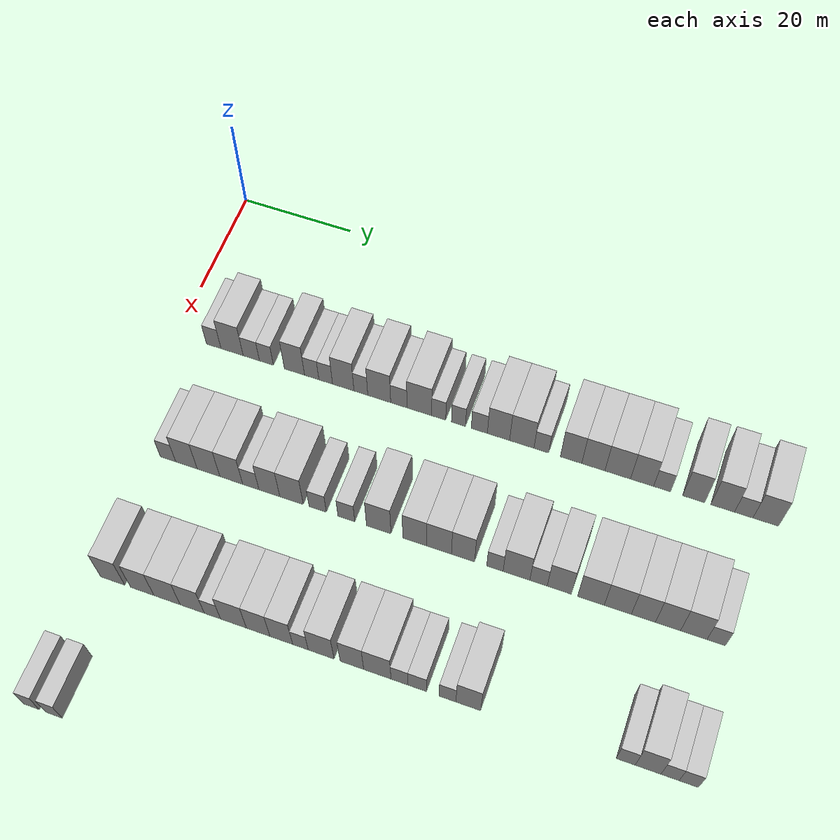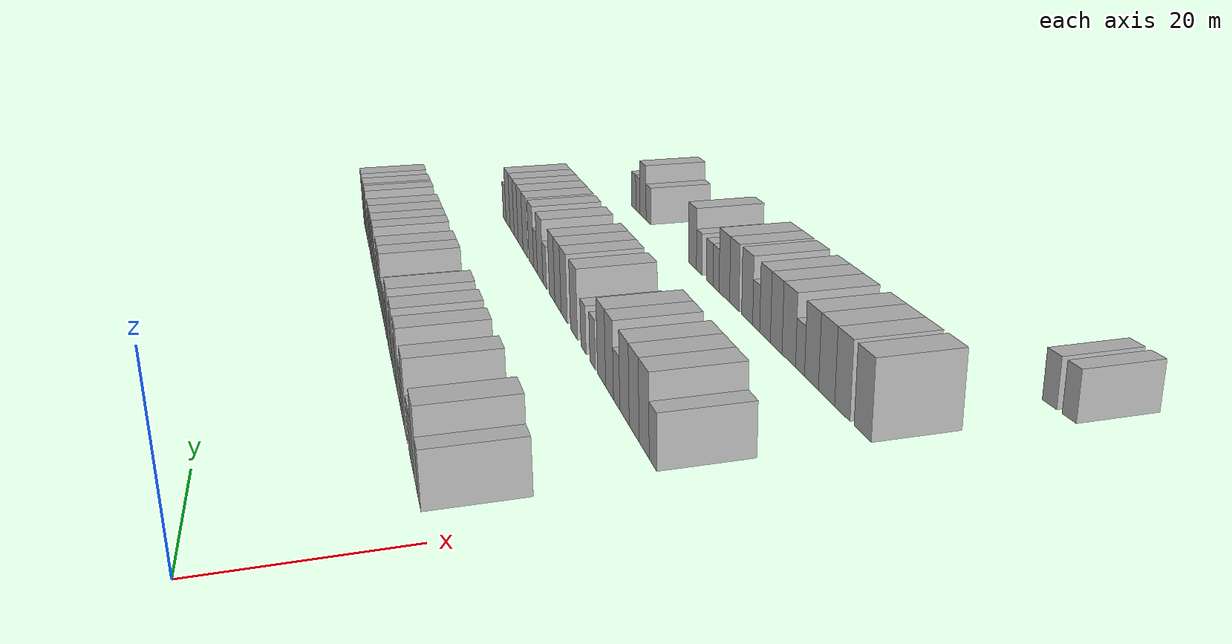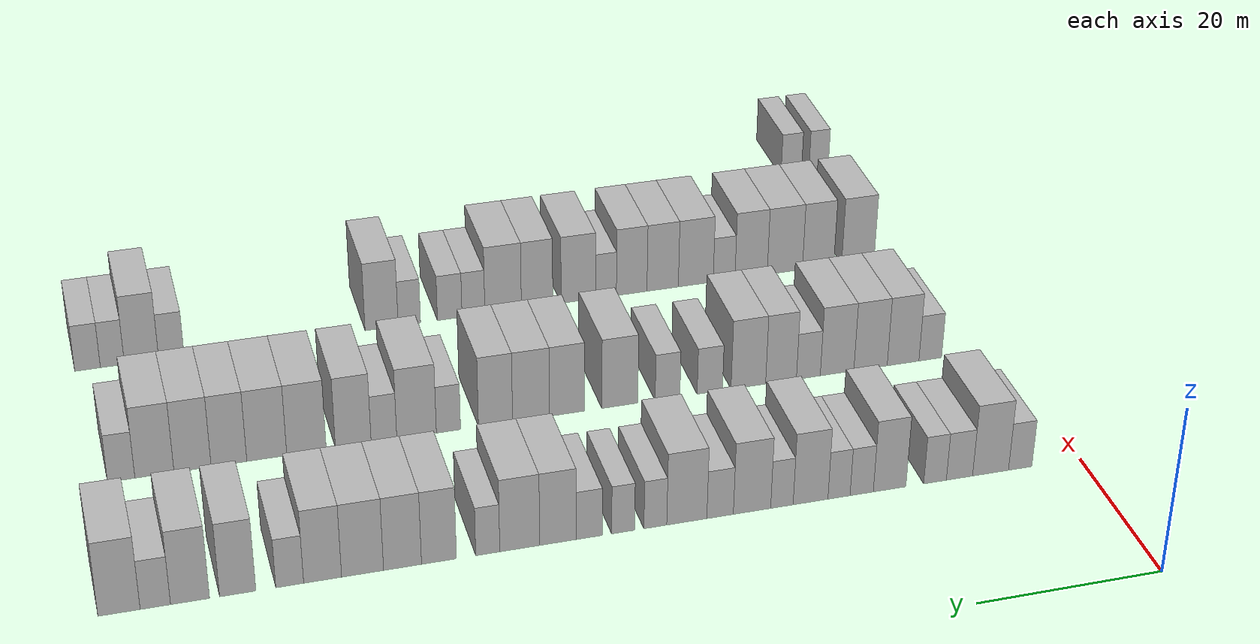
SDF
<sdf version="1.6">
 <world name="default">
  <model name="building_94">
   <static>1</static>
   <pose>25.0000 6.9144 0 0.000000 0.000000 0.000000</pose>
   <link name="link">
    <pose>0 0 3.00 0 0 0</pose>
    <collision name="collision"><geometry><box><size>10.0000 2.6749 6.0000</size></box></geometry></collision>
    <visual name="visual">
     <cast_shadows>0</cast_shadows>
     <geometry><box><size>10.0000 2.6749 6.0000</size></box></geometry>
     <material>
      <script>
       <uri>model://HANNAS_wall/materials/scripts</uri>
       <uri>model://HANNAS_wall/materials/textures</uri>
       <name>vrc/HANNAS_wall</name>
      </script>
     </material>
    </visual>
   </link>
  </model>
  <model name="building_95">
   <static>1</static>
   <pose>25.0000 10.2967 0 0.000000 0.000000 0.000000</pose>
   <link name="link">
    <pose>0 0 4.50 0 0 0</pose>
    <collision name="collision"><geometry><box><size>10.0000 4.0898 9.0000</size></box></geometry></collision>
    <visual name="visual">
     <cast_shadows>0</cast_shadows>
     <geometry><box><size>10.0000 4.0898 9.0000</size></box></geometry>
     <material>
      <script>
       <uri>model://HANNAS_wall/materials/scripts</uri>
       <uri>model://HANNAS_wall/materials/textures</uri>
       <name>vrc/HANNAS_wall</name>
      </script>
     </material>
    </visual>
   </link>
  </model>
  <model name="building_96">
   <static>1</static>
   <pose>25.0000 13.8268 0 0.000000 0.000000 0.000000</pose>
   <link name="link">
    <pose>0 0 3.00 0 0 0</pose>
    <collision name="collision"><geometry><box><size>10.0000 2.9702 6.0000</size></box></geometry></collision>
    <visual name="visual">
     <cast_shadows>0</cast_shadows>
     <geometry><box><size>10.0000 2.9702 6.0000</size></box></geometry>
     <material>
      <script>
       <uri>model://HANNAS_wall/materials/scripts</uri>
       <uri>model://HANNAS_wall/materials/textures</uri>
       <name>vrc/HANNAS_wall</name>
      </script>
     </material>
    </visual>
   </link>
  </model>
  <model name="building_97">
   <static>1</static>
   <pose>25.0000 16.5884 0 0.000000 0.000000 0.000000</pose>
   <link name="link">
    <pose>0 0 3.00 0 0 0</pose>
    <collision name="collision"><geometry><box><size>10.0000 2.5530 6.0000</size></box></geometry></collision>
    <visual name="visual">
     <cast_shadows>0</cast_shadows>
     <geometry><box><size>10.0000 2.5530 6.0000</size></box></geometry>
     <material>
      <script>
       <uri>model://HANNAS_wall/materials/scripts</uri>
       <uri>model://HANNAS_wall/materials/textures</uri>
       <name>vrc/HANNAS_wall</name>
      </script>
     </material>
    </visual>
   </link>
  </model>
  <model name="building_98">
   <static>1</static>
   <pose>25.0000 21.6881 0 0.000000 0.000000 0.000000</pose>
   <link name="link">
    <pose>0 0 4.50 0 0 0</pose>
    <collision name="collision"><geometry><box><size>10.0000 3.6464 9.0000</size></box></geometry></collision>
    <visual name="visual">
     <cast_shadows>0</cast_shadows>
     <geometry><box><size>10.0000 3.6464 9.0000</size></box></geometry>
     <material>
      <script>
       <uri>model://HANNAS_wall/materials/scripts</uri>
       <uri>model://HANNAS_wall/materials/textures</uri>
       <name>vrc/HANNAS_wall</name>
      </script>
     </material>
    </visual>
   </link>
  </model>
  <model name="building_99">
   <static>1</static>
   <pose>25.0000 24.8049 0 0.000000 0.000000 0.000000</pose>
   <link name="link">
    <pose>0 0 3.00 0 0 0</pose>
    <collision name="collision"><geometry><box><size>10.0000 2.5871 6.0000</size></box></geometry></collision>
    <visual name="visual">
     <cast_shadows>0</cast_shadows>
     <geometry><box><size>10.0000 2.5871 6.0000</size></box></geometry>
     <material>
      <script>
       <uri>model://HANNAS_wall/materials/scripts</uri>
       <uri>model://HANNAS_wall/materials/textures</uri>
       <name>vrc/HANNAS_wall</name>
      </script>
     </material>
    </visual>
   </link>
  </model>
  <model name="building_100">
   <static>1</static>
   <pose>25.0000 27.3271 0 0.000000 0.000000 0.000000</pose>
   <link name="link">
    <pose>0 0 3.00 0 0 0</pose>
    <collision name="collision"><geometry><box><size>10.0000 2.4573 6.0000</size></box></geometry></collision>
    <visual name="visual">
     <cast_shadows>0</cast_shadows>
     <geometry><box><size>10.0000 2.4573 6.0000</size></box></geometry>
     <material>
      <script>
       <uri>model://HANNAS_wall/materials/scripts</uri>
       <uri>model://HANNAS_wall/materials/textures</uri>
       <name>vrc/HANNAS_wall</name>
      </script>
     </material>
    </visual>
   </link>
  </model>
  <model name="building_101">
   <static>1</static>
   <pose>25.0000 30.4728 0 0.000000 0.000000 0.000000</pose>
   <link name="link">
    <pose>0 0 4.50 0 0 0</pose>
    <collision name="collision"><geometry><box><size>10.0000 3.8341 9.0000</size></box></geometry></collision>
    <visual name="visual">
     <cast_shadows>0</cast_shadows>
     <geometry><box><size>10.0000 3.8341 9.0000</size></box></geometry>
     <material>
      <script>
       <uri>model://HANNAS_wall/materials/scripts</uri>
       <uri>model://HANNAS_wall/materials/textures</uri>
       <name>vrc/HANNAS_wall</name>
      </script>
     </material>
    </visual>
   </link>
  </model>
  <model name="building_102">
   <static>1</static>
   <pose>25.0000 33.6233 0 0.000000 0.000000 0.000000</pose>
   <link name="link">
    <pose>0 0 3.00 0 0 0</pose>
    <collision name="collision"><geometry><box><size>10.0000 2.4669 6.0000</size></box></geometry></collision>
    <visual name="visual">
     <cast_shadows>0</cast_shadows>
     <geometry><box><size>10.0000 2.4669 6.0000</size></box></geometry>
     <material>
      <script>
       <uri>model://HANNAS_wall/materials/scripts</uri>
       <uri>model://HANNAS_wall/materials/textures</uri>
       <name>vrc/HANNAS_wall</name>
      </script>
     </material>
    </visual>
   </link>
  </model>
  <model name="building_103">
   <static>1</static>
   <pose>25.0000 36.8933 0 0.000000 0.000000 0.000000</pose>
   <link name="link">
    <pose>0 0 4.50 0 0 0</pose>
    <collision name="collision"><geometry><box><size>10.0000 4.0731 9.0000</size></box></geometry></collision>
    <visual name="visual">
     <cast_shadows>0</cast_shadows>
     <geometry><box><size>10.0000 4.0731 9.0000</size></box></geometry>
     <material>
      <script>
       <uri>model://HANNAS_wall/materials/scripts</uri>
       <uri>model://HANNAS_wall/materials/textures</uri>
       <name>vrc/HANNAS_wall</name>
      </script>
     </material>
    </visual>
   </link>
  </model>
  <model name="building_104">
   <static>1</static>
   <pose>25.0000 40.3697 0 0.000000 0.000000 0.000000</pose>
   <link name="link">
    <pose>0 0 3.00 0 0 0</pose>
    <collision name="collision"><geometry><box><size>10.0000 2.8798 6.0000</size></box></geometry></collision>
    <visual name="visual">
     <cast_shadows>0</cast_shadows>
     <geometry><box><size>10.0000 2.8798 6.0000</size></box></geometry>
     <material>
      <script>
       <uri>model://HANNAS_wall/materials/scripts</uri>
       <uri>model://HANNAS_wall/materials/textures</uri>
       <name>vrc/HANNAS_wall</name>
      </script>
     </material>
    </visual>
   </link>
  </model>
  <model name="building_105">
   <static>1</static>
   <pose>25.0000 43.9741 0 0.000000 0.000000 0.000000</pose>
   <link name="link">
    <pose>0 0 4.50 0 0 0</pose>
    <collision name="collision"><geometry><box><size>10.0000 4.3290 9.0000</size></box></geometry></collision>
    <visual name="visual">
     <cast_shadows>0</cast_shadows>
     <geometry><box><size>10.0000 4.3290 9.0000</size></box></geometry>
     <material>
      <script>
       <uri>model://HANNAS_wall/materials/scripts</uri>
       <uri>model://HANNAS_wall/materials/textures</uri>
       <name>vrc/HANNAS_wall</name>
      </script>
     </material>
    </visual>
   </link>
  </model>
  <model name="building_106">
   <static>1</static>
   <pose>25.0000 47.3637 0 0.000000 0.000000 0.000000</pose>
   <link name="link">
    <pose>0 0 3.00 0 0 0</pose>
    <collision name="collision"><geometry><box><size>10.0000 2.4501 6.0000</size></box></geometry></collision>
    <visual name="visual">
     <cast_shadows>0</cast_shadows>
     <geometry><box><size>10.0000 2.4501 6.0000</size></box></geometry>
     <material>
      <script>
       <uri>model://HANNAS_wall/materials/scripts</uri>
       <uri>model://HANNAS_wall/materials/textures</uri>
       <name>vrc/HANNAS_wall</name>
      </script>
     </material>
    </visual>
   </link>
  </model>
  <model name="building_107">
   <static>1</static>
   <pose>25.0000 50.8143 0 0.000000 0.000000 0.000000</pose>
   <link name="link">
    <pose>0 0 3.00 0 0 0</pose>
    <collision name="collision"><geometry><box><size>10.0000 2.4510 6.0000</size></box></geometry></collision>
    <visual name="visual">
     <cast_shadows>0</cast_shadows>
     <geometry><box><size>10.0000 2.4510 6.0000</size></box></geometry>
     <material>
      <script>
       <uri>model://HANNAS_wall/materials/scripts</uri>
       <uri>model://HANNAS_wall/materials/textures</uri>
       <name>vrc/HANNAS_wall</name>
      </script>
     </material>
    </visual>
   </link>
  </model>
  <model name="building_108">
   <static>1</static>
   <pose>25.0000 54.4332 0 0.000000 0.000000 0.000000</pose>
   <link name="link">
    <pose>0 0 3.00 0 0 0</pose>
    <collision name="collision"><geometry><box><size>10.0000 2.7869 6.0000</size></box></geometry></collision>
    <visual name="visual">
     <cast_shadows>0</cast_shadows>
     <geometry><box><size>10.0000 2.7869 6.0000</size></box></geometry>
     <material>
      <script>
       <uri>model://HANNAS_wall/materials/scripts</uri>
       <uri>model://HANNAS_wall/materials/textures</uri>
       <name>vrc/HANNAS_wall</name>
      </script>
     </material>
    </visual>
   </link>
  </model>
  <model name="building_109">
   <static>1</static>
   <pose>25.0000 57.7444 0 0.000000 0.000000 0.000000</pose>
   <link name="link">
    <pose>0 0 4.50 0 0 0</pose>
    <collision name="collision"><geometry><box><size>10.0000 3.8354 9.0000</size></box></geometry></collision>
    <visual name="visual">
     <cast_shadows>0</cast_shadows>
     <geometry><box><size>10.0000 3.8354 9.0000</size></box></geometry>
     <material>
      <script>
       <uri>model://HANNAS_wall/materials/scripts</uri>
       <uri>model://HANNAS_wall/materials/textures</uri>
       <name>vrc/HANNAS_wall</name>
      </script>
     </material>
    </visual>
   </link>
  </model>
  <model name="building_110">
   <static>1</static>
   <pose>25.0000 61.7521 0 0.000000 0.000000 0.000000</pose>
   <link name="link">
    <pose>0 0 4.50 0 0 0</pose>
    <collision name="collision"><geometry><box><size>10.0000 4.1800 9.0000</size></box></geometry></collision>
    <visual name="visual">
     <cast_shadows>0</cast_shadows>
     <geometry><box><size>10.0000 4.1800 9.0000</size></box></geometry>
     <material>
      <script>
       <uri>model://HANNAS_wall/materials/scripts</uri>
       <uri>model://HANNAS_wall/materials/textures</uri>
       <name>vrc/HANNAS_wall</name>
      </script>
     </material>
    </visual>
   </link>
  </model>
  <model name="building_111">
   <static>1</static>
   <pose>25.0000 65.0967 0 0.000000 0.000000 0.000000</pose>
   <link name="link">
    <pose>0 0 3.00 0 0 0</pose>
    <collision name="collision"><geometry><box><size>10.0000 2.5093 6.0000</size></box></geometry></collision>
    <visual name="visual">
     <cast_shadows>0</cast_shadows>
     <geometry><box><size>10.0000 2.5093 6.0000</size></box></geometry>
     <material>
      <script>
       <uri>model://HANNAS_wall/materials/scripts</uri>
       <uri>model://HANNAS_wall/materials/textures</uri>
       <name>vrc/HANNAS_wall</name>
      </script>
     </material>
    </visual>
   </link>
  </model>
  <model name="building_112">
   <static>1</static>
   <pose>25.0000 70.1592 0 0.000000 0.000000 0.000000</pose>
   <link name="link">
    <pose>0 0 4.50 0 0 0</pose>
    <collision name="collision"><geometry><box><size>10.0000 3.6157 9.0000</size></box></geometry></collision>
    <visual name="visual">
     <cast_shadows>0</cast_shadows>
     <geometry><box><size>10.0000 3.6157 9.0000</size></box></geometry>
     <material>
      <script>
       <uri>model://HANNAS_wall/materials/scripts</uri>
       <uri>model://HANNAS_wall/materials/textures</uri>
       <name>vrc/HANNAS_wall</name>
      </script>
     </material>
    </visual>
   </link>
  </model>
  <model name="building_113">
   <static>1</static>
   <pose>25.0000 73.9177 0 0.000000 0.000000 0.000000</pose>
   <link name="link">
    <pose>0 0 4.50 0 0 0</pose>
    <collision name="collision"><geometry><box><size>10.0000 3.9013 9.0000</size></box></geometry></collision>
    <visual name="visual">
     <cast_shadows>0</cast_shadows>
     <geometry><box><size>10.0000 3.9013 9.0000</size></box></geometry>
     <material>
      <script>
       <uri>model://HANNAS_wall/materials/scripts</uri>
       <uri>model://HANNAS_wall/materials/textures</uri>
       <name>vrc/HANNAS_wall</name>
      </script>
     </material>
    </visual>
   </link>
  </model>
  <model name="building_114">
   <static>1</static>
   <pose>25.0000 78.0117 0 0.000000 0.000000 0.000000</pose>
   <link name="link">
    <pose>0 0 4.50 0 0 0</pose>
    <collision name="collision"><geometry><box><size>10.0000 4.2867 9.0000</size></box></geometry></collision>
    <visual name="visual">
     <cast_shadows>0</cast_shadows>
     <geometry><box><size>10.0000 4.2867 9.0000</size></box></geometry>
     <material>
      <script>
       <uri>model://HANNAS_wall/materials/scripts</uri>
       <uri>model://HANNAS_wall/materials/textures</uri>
       <name>vrc/HANNAS_wall</name>
      </script>
     </material>
    </visual>
   </link>
  </model>
  <model name="building_115">
   <static>1</static>
   <pose>25.0000 82.0804 0 0.000000 0.000000 0.000000</pose>
   <link name="link">
    <pose>0 0 4.50 0 0 0</pose>
    <collision name="collision"><geometry><box><size>10.0000 3.8507 9.0000</size></box></geometry></collision>
    <visual name="visual">
     <cast_shadows>0</cast_shadows>
     <geometry><box><size>10.0000 3.8507 9.0000</size></box></geometry>
     <material>
      <script>
       <uri>model://HANNAS_wall/materials/scripts</uri>
       <uri>model://HANNAS_wall/materials/textures</uri>
       <name>vrc/HANNAS_wall</name>
      </script>
     </material>
    </visual>
   </link>
  </model>
  <model name="building_116">
   <static>1</static>
   <pose>25.0000 85.4117 0 0.000000 0.000000 0.000000</pose>
   <link name="link">
    <pose>0 0 3.00 0 0 0</pose>
    <collision name="collision"><geometry><box><size>10.0000 2.8119 6.0000</size></box></geometry></collision>
    <visual name="visual">
     <cast_shadows>0</cast_shadows>
     <geometry><box><size>10.0000 2.8119 6.0000</size></box></geometry>
     <material>
      <script>
       <uri>model://HANNAS_wall/materials/scripts</uri>
       <uri>model://HANNAS_wall/materials/textures</uri>
       <name>vrc/HANNAS_wall</name>
      </script>
     </material>
    </visual>
   </link>
  </model>
  <model name="building_117">
   <static>1</static>
   <pose>25.0000 90.6333 0 0.000000 0.000000 0.000000</pose>
   <link name="link">
    <pose>0 0 4.50 0 0 0</pose>
    <collision name="collision"><geometry><box><size>10.0000 3.6314 9.0000</size></box></geometry></collision>
    <visual name="visual">
     <cast_shadows>0</cast_shadows>
     <geometry><box><size>10.0000 3.6314 9.0000</size></box></geometry>
     <material>
      <script>
       <uri>model://HANNAS_wall/materials/scripts</uri>
       <uri>model://HANNAS_wall/materials/textures</uri>
       <name>vrc/HANNAS_wall</name>
      </script>
     </material>
    </visual>
   </link>
  </model>
  <model name="building_118">
   <static>1</static>
   <pose>25.0000 95.3854 0 0.000000 0.000000 0.000000</pose>
   <link name="link">
    <pose>0 0 4.50 0 0 0</pose>
    <collision name="collision"><geometry><box><size>10.0000 3.8728 9.0000</size></box></geometry></collision>
    <visual name="visual">
     <cast_shadows>0</cast_shadows>
     <geometry><box><size>10.0000 3.8728 9.0000</size></box></geometry>
     <material>
      <script>
       <uri>model://HANNAS_wall/materials/scripts</uri>
       <uri>model://HANNAS_wall/materials/textures</uri>
       <name>vrc/HANNAS_wall</name>
      </script>
     </material>
    </visual>
   </link>
  </model>
  <model name="building_119">
   <static>1</static>
   <pose>25.0000 98.8190 0 0.000000 0.000000 0.000000</pose>
   <link name="link">
    <pose>0 0 3.00 0 0 0</pose>
    <collision name="collision"><geometry><box><size>10.0000 2.9945 6.0000</size></box></geometry></collision>
    <visual name="visual">
     <cast_shadows>0</cast_shadows>
     <geometry><box><size>10.0000 2.9945 6.0000</size></box></geometry>
     <material>
      <script>
       <uri>model://HANNAS_wall/materials/scripts</uri>
       <uri>model://HANNAS_wall/materials/textures</uri>
       <name>vrc/HANNAS_wall</name>
      </script>
     </material>
    </visual>
   </link>
  </model>
  <model name="building_120">
   <static>1</static>
   <pose>25.0000 102.3894 0 0.000000 0.000000 0.000000</pose>
   <link name="link">
    <pose>0 0 4.50 0 0 0</pose>
    <collision name="collision"><geometry><box><size>10.0000 4.1463 9.0000</size></box></geometry></collision>
    <visual name="visual">
     <cast_shadows>0</cast_shadows>
     <geometry><box><size>10.0000 4.1463 9.0000</size></box></geometry>
     <material>
      <script>
       <uri>model://HANNAS_wall/materials/scripts</uri>
       <uri>model://HANNAS_wall/materials/textures</uri>
       <name>vrc/HANNAS_wall</name>
      </script>
     </material>
    </visual>
   </link>
  </model>
  <model name="building_291">
   <static>1</static>
   <pose>47.0000 8.5733 0 0.000000 0.000000 0.000000</pose>
   <link name="link">
    <pose>0 0 3.00 0 0 0</pose>
    <collision name="collision"><geometry><box><size>10.0000 2.7366 6.0000</size></box></geometry></collision>
    <visual name="visual">
     <cast_shadows>0</cast_shadows>
     <geometry><box><size>10.0000 2.7366 6.0000</size></box></geometry>
     <material>
      <script>
       <uri>model://HANNAS_wall/materials/scripts</uri>
       <uri>model://HANNAS_wall/materials/textures</uri>
       <name>vrc/HANNAS_wall</name>
      </script>
     </material>
    </visual>
   </link>
  </model>
  <model name="building_292">
   <static>1</static>
   <pose>47.0000 11.8498 0 0.000000 0.000000 0.000000</pose>
   <link name="link">
    <pose>0 0 4.50 0 0 0</pose>
    <collision name="collision"><geometry><box><size>10.0000 3.8163 9.0000</size></box></geometry></collision>
    <visual name="visual">
     <cast_shadows>0</cast_shadows>
     <geometry><box><size>10.0000 3.8163 9.0000</size></box></geometry>
     <material>
      <script>
       <uri>model://HANNAS_wall/materials/scripts</uri>
       <uri>model://HANNAS_wall/materials/textures</uri>
       <name>vrc/HANNAS_wall</name>
      </script>
     </material>
    </visual>
   </link>
  </model>
  <model name="building_293">
   <static>1</static>
   <pose>47.0000 15.7530 0 0.000000 0.000000 0.000000</pose>
   <link name="link">
    <pose>0 0 4.50 0 0 0</pose>
    <collision name="collision"><geometry><box><size>10.0000 3.9901 9.0000</size></box></geometry></collision>
    <visual name="visual">
     <cast_shadows>0</cast_shadows>
     <geometry><box><size>10.0000 3.9901 9.0000</size></box></geometry>
     <material>
      <script>
       <uri>model://HANNAS_wall/materials/scripts</uri>
       <uri>model://HANNAS_wall/materials/textures</uri>
       <name>vrc/HANNAS_wall</name>
      </script>
     </material>
    </visual>
   </link>
  </model>
  <model name="building_294">
   <static>1</static>
   <pose>47.0000 19.7426 0 0.000000 0.000000 0.000000</pose>
   <link name="link">
    <pose>0 0 4.50 0 0 0</pose>
    <collision name="collision"><geometry><box><size>10.0000 3.9890 9.0000</size></box></geometry></collision>
    <visual name="visual">
     <cast_shadows>0</cast_shadows>
     <geometry><box><size>10.0000 3.9890 9.0000</size></box></geometry>
     <material>
      <script>
       <uri>model://HANNAS_wall/materials/scripts</uri>
       <uri>model://HANNAS_wall/materials/textures</uri>
       <name>vrc/HANNAS_wall</name>
      </script>
     </material>
    </visual>
   </link>
  </model>
  <model name="building_295">
   <static>1</static>
   <pose>47.0000 23.1518 0 0.000000 0.000000 0.000000</pose>
   <link name="link">
    <pose>0 0 3.00 0 0 0</pose>
    <collision name="collision"><geometry><box><size>10.0000 2.8295 6.0000</size></box></geometry></collision>
    <visual name="visual">
     <cast_shadows>0</cast_shadows>
     <geometry><box><size>10.0000 2.8295 6.0000</size></box></geometry>
     <material>
      <script>
       <uri>model://HANNAS_wall/materials/scripts</uri>
       <uri>model://HANNAS_wall/materials/textures</uri>
       <name>vrc/HANNAS_wall</name>
      </script>
     </material>
    </visual>
   </link>
  </model>
  <model name="building_296">
   <static>1</static>
   <pose>47.0000 26.3794 0 0.000000 0.000000 0.000000</pose>
   <link name="link">
    <pose>0 0 4.50 0 0 0</pose>
    <collision name="collision"><geometry><box><size>10.0000 3.6257 9.0000</size></box></geometry></collision>
    <visual name="visual">
     <cast_shadows>0</cast_shadows>
     <geometry><box><size>10.0000 3.6257 9.0000</size></box></geometry>
     <material>
      <script>
       <uri>model://HANNAS_wall/materials/scripts</uri>
       <uri>model://HANNAS_wall/materials/textures</uri>
       <name>vrc/HANNAS_wall</name>
      </script>
     </material>
    </visual>
   </link>
  </model>
  <model name="building_297">
   <static>1</static>
   <pose>47.0000 30.2187 0 0.000000 0.000000 0.000000</pose>
   <link name="link">
    <pose>0 0 4.50 0 0 0</pose>
    <collision name="collision"><geometry><box><size>10.0000 4.0527 9.0000</size></box></geometry></collision>
    <visual name="visual">
     <cast_shadows>0</cast_shadows>
     <geometry><box><size>10.0000 4.0527 9.0000</size></box></geometry>
     <material>
      <script>
       <uri>model://HANNAS_wall/materials/scripts</uri>
       <uri>model://HANNAS_wall/materials/textures</uri>
       <name>vrc/HANNAS_wall</name>
      </script>
     </material>
    </visual>
   </link>
  </model>
  <model name="building_298">
   <static>1</static>
   <pose>47.0000 34.7173 0 0.000000 0.000000 0.000000</pose>
   <link name="link">
    <pose>0 0 3.00 0 0 0</pose>
    <collision name="collision"><geometry><box><size>10.0000 2.9447 6.0000</size></box></geometry></collision>
    <visual name="visual">
     <cast_shadows>0</cast_shadows>
     <geometry><box><size>10.0000 2.9447 6.0000</size></box></geometry>
     <material>
      <script>
       <uri>model://HANNAS_wall/materials/scripts</uri>
       <uri>model://HANNAS_wall/materials/textures</uri>
       <name>vrc/HANNAS_wall</name>
      </script>
     </material>
    </visual>
   </link>
  </model>
  <model name="building_299">
   <static>1</static>
   <pose>47.0000 39.6180 0 0.000000 0.000000 0.000000</pose>
   <link name="link">
    <pose>0 0 3.00 0 0 0</pose>
    <collision name="collision"><geometry><box><size>10.0000 2.8566 6.0000</size></box></geometry></collision>
    <visual name="visual">
     <cast_shadows>0</cast_shadows>
     <geometry><box><size>10.0000 2.8566 6.0000</size></box></geometry>
     <material>
      <script>
       <uri>model://HANNAS_wall/materials/scripts</uri>
       <uri>model://HANNAS_wall/materials/textures</uri>
       <name>vrc/HANNAS_wall</name>
      </script>
     </material>
    </visual>
   </link>
  </model>
  <model name="building_300">
   <static>1</static>
   <pose>47.0000 45.1063 0 0.000000 0.000000 0.000000</pose>
   <link name="link">
    <pose>0 0 4.50 0 0 0</pose>
    <collision name="collision"><geometry><box><size>10.0000 4.1202 9.0000</size></box></geometry></collision>
    <visual name="visual">
     <cast_shadows>0</cast_shadows>
     <geometry><box><size>10.0000 4.1202 9.0000</size></box></geometry>
     <material>
      <script>
       <uri>model://HANNAS_wall/materials/scripts</uri>
       <uri>model://HANNAS_wall/materials/textures</uri>
       <name>vrc/HANNAS_wall</name>
      </script>
     </material>
    </visual>
   </link>
  </model>
  <model name="building_301">
   <static>1</static>
   <pose>47.0000 51.1379 0 0.000000 0.000000 0.000000</pose>
   <link name="link">
    <pose>0 0 4.50 0 0 0</pose>
    <collision name="collision"><geometry><box><size>10.0000 3.9429 9.0000</size></box></geometry></collision>
    <visual name="visual">
     <cast_shadows>0</cast_shadows>
     <geometry><box><size>10.0000 3.9429 9.0000</size></box></geometry>
     <material>
      <script>
       <uri>model://HANNAS_wall/materials/scripts</uri>
       <uri>model://HANNAS_wall/materials/textures</uri>
       <name>vrc/HANNAS_wall</name>
      </script>
     </material>
    </visual>
   </link>
  </model>
  <model name="building_302">
   <static>1</static>
   <pose>47.0000 55.1902 0 0.000000 0.000000 0.000000</pose>
   <link name="link">
    <pose>0 0 4.50 0 0 0</pose>
    <collision name="collision"><geometry><box><size>10.0000 4.1617 9.0000</size></box></geometry></collision>
    <visual name="visual">
     <cast_shadows>0</cast_shadows>
     <geometry><box><size>10.0000 4.1617 9.0000</size></box></geometry>
     <material>
      <script>
       <uri>model://HANNAS_wall/materials/scripts</uri>
       <uri>model://HANNAS_wall/materials/textures</uri>
       <name>vrc/HANNAS_wall</name>
      </script>
     </material>
    </visual>
   </link>
  </model>
  <model name="building_303">
   <static>1</static>
   <pose>47.0000 59.1838 0 0.000000 0.000000 0.000000</pose>
   <link name="link">
    <pose>0 0 4.50 0 0 0</pose>
    <collision name="collision"><geometry><box><size>10.0000 3.8256 9.0000</size></box></geometry></collision>
    <visual name="visual">
     <cast_shadows>0</cast_shadows>
     <geometry><box><size>10.0000 3.8256 9.0000</size></box></geometry>
     <material>
      <script>
       <uri>model://HANNAS_wall/materials/scripts</uri>
       <uri>model://HANNAS_wall/materials/textures</uri>
       <name>vrc/HANNAS_wall</name>
      </script>
     </material>
    </visual>
   </link>
  </model>
  <model name="building_304">
   <static>1</static>
   <pose>47.0000 64.4404 0 0.000000 0.000000 0.000000</pose>
   <link name="link">
    <pose>0 0 3.00 0 0 0</pose>
    <collision name="collision"><geometry><box><size>10.0000 2.6876 6.0000</size></box></geometry></collision>
    <visual name="visual">
     <cast_shadows>0</cast_shadows>
     <geometry><box><size>10.0000 2.6876 6.0000</size></box></geometry>
     <material>
      <script>
       <uri>model://HANNAS_wall/materials/scripts</uri>
       <uri>model://HANNAS_wall/materials/textures</uri>
       <name>vrc/HANNAS_wall</name>
      </script>
     </material>
    </visual>
   </link>
  </model>
  <model name="building_305">
   <static>1</static>
   <pose>47.0000 67.9738 0 0.000000 0.000000 0.000000</pose>
   <link name="link">
    <pose>0 0 4.50 0 0 0</pose>
    <collision name="collision"><geometry><box><size>10.0000 4.3793 9.0000</size></box></geometry></collision>
    <visual name="visual">
     <cast_shadows>0</cast_shadows>
     <geometry><box><size>10.0000 4.3793 9.0000</size></box></geometry>
     <material>
      <script>
       <uri>model://HANNAS_wall/materials/scripts</uri>
       <uri>model://HANNAS_wall/materials/textures</uri>
       <name>vrc/HANNAS_wall</name>
      </script>
     </material>
    </visual>
   </link>
  </model>
  <model name="building_306">
   <static>1</static>
   <pose>47.0000 71.5729 0 0.000000 0.000000 0.000000</pose>
   <link name="link">
    <pose>0 0 3.00 0 0 0</pose>
    <collision name="collision"><geometry><box><size>10.0000 2.8189 6.0000</size></box></geometry></collision>
    <visual name="visual">
     <cast_shadows>0</cast_shadows>
     <geometry><box><size>10.0000 2.8189 6.0000</size></box></geometry>
     <material>
      <script>
       <uri>model://HANNAS_wall/materials/scripts</uri>
       <uri>model://HANNAS_wall/materials/textures</uri>
       <name>vrc/HANNAS_wall</name>
      </script>
     </material>
    </visual>
   </link>
  </model>
  <model name="building_307">
   <static>1</static>
   <pose>47.0000 74.9385 0 0.000000 0.000000 0.000000</pose>
   <link name="link">
    <pose>0 0 4.50 0 0 0</pose>
    <collision name="collision"><geometry><box><size>10.0000 3.9121 9.0000</size></box></geometry></collision>
    <visual name="visual">
     <cast_shadows>0</cast_shadows>
     <geometry><box><size>10.0000 3.9121 9.0000</size></box></geometry>
     <material>
      <script>
       <uri>model://HANNAS_wall/materials/scripts</uri>
       <uri>model://HANNAS_wall/materials/textures</uri>
       <name>vrc/HANNAS_wall</name>
      </script>
     </material>
    </visual>
   </link>
  </model>
  <model name="building_308">
   <static>1</static>
   <pose>47.0000 80.0350 0 0.000000 0.000000 0.000000</pose>
   <link name="link">
    <pose>0 0 4.50 0 0 0</pose>
    <collision name="collision"><geometry><box><size>10.0000 4.2809 9.0000</size></box></geometry></collision>
    <visual name="visual">
     <cast_shadows>0</cast_shadows>
     <geometry><box><size>10.0000 4.2809 9.0000</size></box></geometry>
     <material>
      <script>
       <uri>model://HANNAS_wall/materials/scripts</uri>
       <uri>model://HANNAS_wall/materials/textures</uri>
       <name>vrc/HANNAS_wall</name>
      </script>
     </material>
    </visual>
   </link>
  </model>
  <model name="building_309">
   <static>1</static>
   <pose>47.0000 84.3329 0 0.000000 0.000000 0.000000</pose>
   <link name="link">
    <pose>0 0 4.50 0 0 0</pose>
    <collision name="collision"><geometry><box><size>10.0000 4.3149 9.0000</size></box></geometry></collision>
    <visual name="visual">
     <cast_shadows>0</cast_shadows>
     <geometry><box><size>10.0000 4.3149 9.0000</size></box></geometry>
     <material>
      <script>
       <uri>model://HANNAS_wall/materials/scripts</uri>
       <uri>model://HANNAS_wall/materials/textures</uri>
       <name>vrc/HANNAS_wall</name>
      </script>
     </material>
    </visual>
   </link>
  </model>
  <model name="building_310">
   <static>1</static>
   <pose>47.0000 88.4012 0 0.000000 0.000000 0.000000</pose>
   <link name="link">
    <pose>0 0 4.50 0 0 0</pose>
    <collision name="collision"><geometry><box><size>10.0000 3.8217 9.0000</size></box></geometry></collision>
    <visual name="visual">
     <cast_shadows>0</cast_shadows>
     <geometry><box><size>10.0000 3.8217 9.0000</size></box></geometry>
     <material>
      <script>
       <uri>model://HANNAS_wall/materials/scripts</uri>
       <uri>model://HANNAS_wall/materials/textures</uri>
       <name>vrc/HANNAS_wall</name>
      </script>
     </material>
    </visual>
   </link>
  </model>
  <model name="building_311">
   <static>1</static>
   <pose>47.0000 92.2916 0 0.000000 0.000000 0.000000</pose>
   <link name="link">
    <pose>0 0 4.50 0 0 0</pose>
    <collision name="collision"><geometry><box><size>10.0000 3.9592 9.0000</size></box></geometry></collision>
    <visual name="visual">
     <cast_shadows>0</cast_shadows>
     <geometry><box><size>10.0000 3.9592 9.0000</size></box></geometry>
     <material>
      <script>
       <uri>model://HANNAS_wall/materials/scripts</uri>
       <uri>model://HANNAS_wall/materials/textures</uri>
       <name>vrc/HANNAS_wall</name>
      </script>
     </material>
    </visual>
   </link>
  </model>
  <model name="building_312">
   <static>1</static>
   <pose>47.0000 96.3420 0 0.000000 0.000000 0.000000</pose>
   <link name="link">
    <pose>0 0 4.50 0 0 0</pose>
    <collision name="collision"><geometry><box><size>10.0000 4.1414 9.0000</size></box></geometry></collision>
    <visual name="visual">
     <cast_shadows>0</cast_shadows>
     <geometry><box><size>10.0000 4.1414 9.0000</size></box></geometry>
     <material>
      <script>
       <uri>model://HANNAS_wall/materials/scripts</uri>
       <uri>model://HANNAS_wall/materials/textures</uri>
       <name>vrc/HANNAS_wall</name>
      </script>
     </material>
    </visual>
   </link>
  </model>
  <model name="building_313">
   <static>1</static>
   <pose>47.0000 99.8558 0 0.000000 0.000000 0.000000</pose>
   <link name="link">
    <pose>0 0 3.00 0 0 0</pose>
    <collision name="collision"><geometry><box><size>10.0000 2.8862 6.0000</size></box></geometry></collision>
    <visual name="visual">
     <cast_shadows>0</cast_shadows>
     <geometry><box><size>10.0000 2.8862 6.0000</size></box></geometry>
     <material>
      <script>
       <uri>model://HANNAS_wall/materials/scripts</uri>
       <uri>model://HANNAS_wall/materials/textures</uri>
       <name>vrc/HANNAS_wall</name>
      </script>
     </material>
    </visual>
   </link>
  </model>
  <model name="building_476">
   <static>1</static>
   <pose>69.0000 9.3030 0 0.000000 0.000000 0.000000</pose>
   <link name="link">
    <pose>0 0 4.50 0 0 0</pose>
    <collision name="collision"><geometry><box><size>10.0000 4.1398 9.0000</size></box></geometry></collision>
    <visual name="visual">
     <cast_shadows>0</cast_shadows>
     <geometry><box><size>10.0000 4.1398 9.0000</size></box></geometry>
     <material>
      <script>
       <uri>model://HANNAS_wall/materials/scripts</uri>
       <uri>model://HANNAS_wall/materials/textures</uri>
       <name>vrc/HANNAS_wall</name>
      </script>
     </material>
    </visual>
   </link>
  </model>
  <model name="building_477">
   <static>1</static>
   <pose>69.0000 14.3577 0 0.000000 0.000000 0.000000</pose>
   <link name="link">
    <pose>0 0 4.50 0 0 0</pose>
    <collision name="collision"><geometry><box><size>10.0000 3.9697 9.0000</size></box></geometry></collision>
    <visual name="visual">
     <cast_shadows>0</cast_shadows>
     <geometry><box><size>10.0000 3.9697 9.0000</size></box></geometry>
     <material>
      <script>
       <uri>model://HANNAS_wall/materials/scripts</uri>
       <uri>model://HANNAS_wall/materials/textures</uri>
       <name>vrc/HANNAS_wall</name>
      </script>
     </material>
    </visual>
   </link>
  </model>
  <model name="building_478">
   <static>1</static>
   <pose>69.0000 18.5614 0 0.000000 0.000000 0.000000</pose>
   <link name="link">
    <pose>0 0 4.50 0 0 0</pose>
    <collision name="collision"><geometry><box><size>10.0000 4.4378 9.0000</size></box></geometry></collision>
    <visual name="visual">
     <cast_shadows>0</cast_shadows>
     <geometry><box><size>10.0000 4.4378 9.0000</size></box></geometry>
     <material>
      <script>
       <uri>model://HANNAS_wall/materials/scripts</uri>
       <uri>model://HANNAS_wall/materials/textures</uri>
       <name>vrc/HANNAS_wall</name>
      </script>
     </material>
    </visual>
   </link>
  </model>
  <model name="building_479">
   <static>1</static>
   <pose>69.0000 22.7990 0 0.000000 0.000000 0.000000</pose>
   <link name="link">
    <pose>0 0 4.50 0 0 0</pose>
    <collision name="collision"><geometry><box><size>10.0000 4.0374 9.0000</size></box></geometry></collision>
    <visual name="visual">
     <cast_shadows>0</cast_shadows>
     <geometry><box><size>10.0000 4.0374 9.0000</size></box></geometry>
     <material>
      <script>
       <uri>model://HANNAS_wall/materials/scripts</uri>
       <uri>model://HANNAS_wall/materials/textures</uri>
       <name>vrc/HANNAS_wall</name>
      </script>
     </material>
    </visual>
   </link>
  </model>
  <model name="building_480">
   <static>1</static>
   <pose>69.0000 26.1745 0 0.000000 0.000000 0.000000</pose>
   <link name="link">
    <pose>0 0 3.00 0 0 0</pose>
    <collision name="collision"><geometry><box><size>10.0000 2.7136 6.0000</size></box></geometry></collision>
    <visual name="visual">
     <cast_shadows>0</cast_shadows>
     <geometry><box><size>10.0000 2.7136 6.0000</size></box></geometry>
     <material>
      <script>
       <uri>model://HANNAS_wall/materials/scripts</uri>
       <uri>model://HANNAS_wall/materials/textures</uri>
       <name>vrc/HANNAS_wall</name>
      </script>
     </material>
    </visual>
   </link>
  </model>
  <model name="building_481">
   <static>1</static>
   <pose>69.0000 29.6890 0 0.000000 0.000000 0.000000</pose>
   <link name="link">
    <pose>0 0 4.50 0 0 0</pose>
    <collision name="collision"><geometry><box><size>10.0000 4.3153 9.0000</size></box></geometry></collision>
    <visual name="visual">
     <cast_shadows>0</cast_shadows>
     <geometry><box><size>10.0000 4.3153 9.0000</size></box></geometry>
     <material>
      <script>
       <uri>model://HANNAS_wall/materials/scripts</uri>
       <uri>model://HANNAS_wall/materials/textures</uri>
       <name>vrc/HANNAS_wall</name>
      </script>
     </material>
    </visual>
   </link>
  </model>
  <model name="building_482">
   <static>1</static>
   <pose>69.0000 33.7822 0 0.000000 0.000000 0.000000</pose>
   <link name="link">
    <pose>0 0 4.50 0 0 0</pose>
    <collision name="collision"><geometry><box><size>10.0000 3.8711 9.0000</size></box></geometry></collision>
    <visual name="visual">
     <cast_shadows>0</cast_shadows>
     <geometry><box><size>10.0000 3.8711 9.0000</size></box></geometry>
     <material>
      <script>
       <uri>model://HANNAS_wall/materials/scripts</uri>
       <uri>model://HANNAS_wall/materials/textures</uri>
       <name>vrc/HANNAS_wall</name>
      </script>
     </material>
    </visual>
   </link>
  </model>
  <model name="building_483">
   <static>1</static>
   <pose>69.0000 37.5913 0 0.000000 0.000000 0.000000</pose>
   <link name="link">
    <pose>0 0 4.50 0 0 0</pose>
    <collision name="collision"><geometry><box><size>10.0000 3.7470 9.0000</size></box></geometry></collision>
    <visual name="visual">
     <cast_shadows>0</cast_shadows>
     <geometry><box><size>10.0000 3.7470 9.0000</size></box></geometry>
     <material>
      <script>
       <uri>model://HANNAS_wall/materials/scripts</uri>
       <uri>model://HANNAS_wall/materials/textures</uri>
       <name>vrc/HANNAS_wall</name>
      </script>
     </material>
    </visual>
   </link>
  </model>
  <model name="building_484">
   <static>1</static>
   <pose>69.0000 40.7385 0 0.000000 0.000000 0.000000</pose>
   <link name="link">
    <pose>0 0 3.00 0 0 0</pose>
    <collision name="collision"><geometry><box><size>10.0000 2.5475 6.0000</size></box></geometry></collision>
    <visual name="visual">
     <cast_shadows>0</cast_shadows>
     <geometry><box><size>10.0000 2.5475 6.0000</size></box></geometry>
     <material>
      <script>
       <uri>model://HANNAS_wall/materials/scripts</uri>
       <uri>model://HANNAS_wall/materials/textures</uri>
       <name>vrc/HANNAS_wall</name>
      </script>
     </material>
    </visual>
   </link>
  </model>
  <model name="building_485">
   <static>1</static>
   <pose>69.0000 44.1033 0 0.000000 0.000000 0.000000</pose>
   <link name="link">
    <pose>0 0 4.50 0 0 0</pose>
    <collision name="collision"><geometry><box><size>10.0000 4.1820 9.0000</size></box></geometry></collision>
    <visual name="visual">
     <cast_shadows>0</cast_shadows>
     <geometry><box><size>10.0000 4.1820 9.0000</size></box></geometry>
     <material>
      <script>
       <uri>model://HANNAS_wall/materials/scripts</uri>
       <uri>model://HANNAS_wall/materials/textures</uri>
       <name>vrc/HANNAS_wall</name>
      </script>
     </material>
    </visual>
   </link>
  </model>
  <model name="building_486">
   <static>1</static>
   <pose>69.0000 49.0890 0 0.000000 0.000000 0.000000</pose>
   <link name="link">
    <pose>0 0 4.50 0 0 0</pose>
    <collision name="collision"><geometry><box><size>10.0000 3.7895 9.0000</size></box></geometry></collision>
    <visual name="visual">
     <cast_shadows>0</cast_shadows>
     <geometry><box><size>10.0000 3.7895 9.0000</size></box></geometry>
     <material>
      <script>
       <uri>model://HANNAS_wall/materials/scripts</uri>
       <uri>model://HANNAS_wall/materials/textures</uri>
       <name>vrc/HANNAS_wall</name>
      </script>
     </material>
    </visual>
   </link>
  </model>
  <model name="building_487">
   <static>1</static>
   <pose>69.0000 53.1728 0 0.000000 0.000000 0.000000</pose>
   <link name="link">
    <pose>0 0 4.50 0 0 0</pose>
    <collision name="collision"><geometry><box><size>10.0000 4.3781 9.0000</size></box></geometry></collision>
    <visual name="visual">
     <cast_shadows>0</cast_shadows>
     <geometry><box><size>10.0000 4.3781 9.0000</size></box></geometry>
     <material>
      <script>
       <uri>model://HANNAS_wall/materials/scripts</uri>
       <uri>model://HANNAS_wall/materials/textures</uri>
       <name>vrc/HANNAS_wall</name>
      </script>
     </material>
    </visual>
   </link>
  </model>
  <model name="building_488">
   <static>1</static>
   <pose>69.0000 56.7225 0 0.000000 0.000000 0.000000</pose>
   <link name="link">
    <pose>0 0 3.00 0 0 0</pose>
    <collision name="collision"><geometry><box><size>10.0000 2.7214 6.0000</size></box></geometry></collision>
    <visual name="visual">
     <cast_shadows>0</cast_shadows>
     <geometry><box><size>10.0000 2.7214 6.0000</size></box></geometry>
     <material>
      <script>
       <uri>model://HANNAS_wall/materials/scripts</uri>
       <uri>model://HANNAS_wall/materials/textures</uri>
       <name>vrc/HANNAS_wall</name>
      </script>
     </material>
    </visual>
   </link>
  </model>
  <model name="building_489">
   <static>1</static>
   <pose>69.0000 59.5460 0 0.000000 0.000000 0.000000</pose>
   <link name="link">
    <pose>0 0 3.00 0 0 0</pose>
    <collision name="collision"><geometry><box><size>10.0000 2.9256 6.0000</size></box></geometry></collision>
    <visual name="visual">
     <cast_shadows>0</cast_shadows>
     <geometry><box><size>10.0000 2.9256 6.0000</size></box></geometry>
     <material>
      <script>
       <uri>model://HANNAS_wall/materials/scripts</uri>
       <uri>model://HANNAS_wall/materials/textures</uri>
       <name>vrc/HANNAS_wall</name>
      </script>
     </material>
    </visual>
   </link>
  </model>
  <model name="building_490">
   <static>1</static>
   <pose>69.0000 64.3293 0 0.000000 0.000000 0.000000</pose>
   <link name="link">
    <pose>0 0 3.00 0 0 0</pose>
    <collision name="collision"><geometry><box><size>10.0000 2.6410 6.0000</size></box></geometry></collision>
    <visual name="visual">
     <cast_shadows>0</cast_shadows>
     <geometry><box><size>10.0000 2.6410 6.0000</size></box></geometry>
     <material>
      <script>
       <uri>model://HANNAS_wall/materials/scripts</uri>
       <uri>model://HANNAS_wall/materials/textures</uri>
       <name>vrc/HANNAS_wall</name>
      </script>
     </material>
    </visual>
   </link>
  </model>
  <model name="building_491">
   <static>1</static>
   <pose>69.0000 67.5946 0 0.000000 0.000000 0.000000</pose>
   <link name="link">
    <pose>0 0 4.50 0 0 0</pose>
    <collision name="collision"><geometry><box><size>10.0000 3.8896 9.0000</size></box></geometry></collision>
    <visual name="visual">
     <cast_shadows>0</cast_shadows>
     <geometry><box><size>10.0000 3.8896 9.0000</size></box></geometry>
     <material>
      <script>
       <uri>model://HANNAS_wall/materials/scripts</uri>
       <uri>model://HANNAS_wall/materials/textures</uri>
       <name>vrc/HANNAS_wall</name>
      </script>
     </material>
    </visual>
   </link>
  </model>
  <model name="building_492">
   <static>1</static>
   <pose>69.0000 91.8539 0 0.000000 0.000000 0.000000</pose>
   <link name="link">
    <pose>0 0 3.00 0 0 0</pose>
    <collision name="collision"><geometry><box><size>10.0000 2.8763 6.0000</size></box></geometry></collision>
    <visual name="visual">
     <cast_shadows>0</cast_shadows>
     <geometry><box><size>10.0000 2.8763 6.0000</size></box></geometry>
     <material>
      <script>
       <uri>model://HANNAS_wall/materials/scripts</uri>
       <uri>model://HANNAS_wall/materials/textures</uri>
       <name>vrc/HANNAS_wall</name>
      </script>
     </material>
    </visual>
   </link>
  </model>
  <model name="building_493">
   <static>1</static>
   <pose>69.0000 95.2280 0 0.000000 0.000000 0.000000</pose>
   <link name="link">
    <pose>0 0 4.50 0 0 0</pose>
    <collision name="collision"><geometry><box><size>10.0000 3.8719 9.0000</size></box></geometry></collision>
    <visual name="visual">
     <cast_shadows>0</cast_shadows>
     <geometry><box><size>10.0000 3.8719 9.0000</size></box></geometry>
     <material>
      <script>
       <uri>model://HANNAS_wall/materials/scripts</uri>
       <uri>model://HANNAS_wall/materials/textures</uri>
       <name>vrc/HANNAS_wall</name>
      </script>
     </material>
    </visual>
   </link>
  </model>
  <model name="building_494">
   <static>1</static>
   <pose>69.0000 98.5142 0 0.000000 0.000000 0.000000</pose>
   <link name="link">
    <pose>0 0 3.00 0 0 0</pose>
    <collision name="collision"><geometry><box><size>10.0000 2.7005 6.0000</size></box></geometry></collision>
    <visual name="visual">
     <cast_shadows>0</cast_shadows>
     <geometry><box><size>10.0000 2.7005 6.0000</size></box></geometry>
     <material>
      <script>
       <uri>model://HANNAS_wall/materials/scripts</uri>
       <uri>model://HANNAS_wall/materials/textures</uri>
       <name>vrc/HANNAS_wall</name>
      </script>
     </material>
    </visual>
   </link>
  </model>
  <model name="building_495">
   <static>1</static>
   <pose>69.0000 101.3026 0 0.000000 0.000000 0.000000</pose>
   <link name="link">
    <pose>0 0 3.00 0 0 0</pose>
    <collision name="collision"><geometry><box><size>10.0000 2.8763 6.0000</size></box></geometry></collision>
    <visual name="visual">
     <cast_shadows>0</cast_shadows>
     <geometry><box><size>10.0000 2.8763 6.0000</size></box></geometry>
     <material>
      <script>
       <uri>model://HANNAS_wall/materials/scripts</uri>
       <uri>model://HANNAS_wall/materials/textures</uri>
       <name>vrc/HANNAS_wall</name>
      </script>
     </material>
    </visual>
   </link>
  </model>
  <model name="building_661">
   <static>1</static>
   <pose>91.0000 6.6725 0 0.000000 0.000000 0.000000</pose>
   <link name="link">
    <pose>0 0 3.00 0 0 0</pose>
    <collision name="collision"><geometry><box><size>10.0000 2.5873 6.0000</size></box></geometry></collision>
    <visual name="visual">
     <cast_shadows>0</cast_shadows>
     <geometry><box><size>10.0000 2.5873 6.0000</size></box></geometry>
     <material>
      <script>
       <uri>model://HANNAS_wall/materials/scripts</uri>
       <uri>model://HANNAS_wall/materials/textures</uri>
       <name>vrc/HANNAS_wall</name>
      </script>
     </material>
    </visual>
   </link>
  </model>
  <model name="building_662">
   <static>1</static>
   <pose>91.0000 10.3374 0 0.000000 0.000000 0.000000</pose>
   <link name="link">
    <pose>0 0 3.00 0 0 0</pose>
    <collision name="collision"><geometry><box><size>10.0000 2.7424 6.0000</size></box></geometry></collision>
    <visual name="visual">
     <cast_shadows>0</cast_shadows>
     <geometry><box><size>10.0000 2.7424 6.0000</size></box></geometry>
     <material>
      <script>
       <uri>model://HANNAS_wall/materials/scripts</uri>
       <uri>model://HANNAS_wall/materials/textures</uri>
       <name>vrc/HANNAS_wall</name>
      </script>
     </material>
    </visual>
   </link>
  </model>
 </world>
</sdf>
